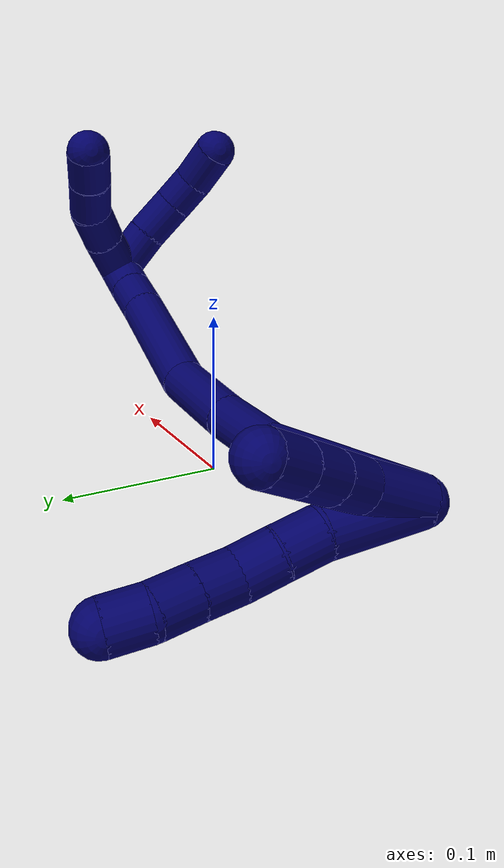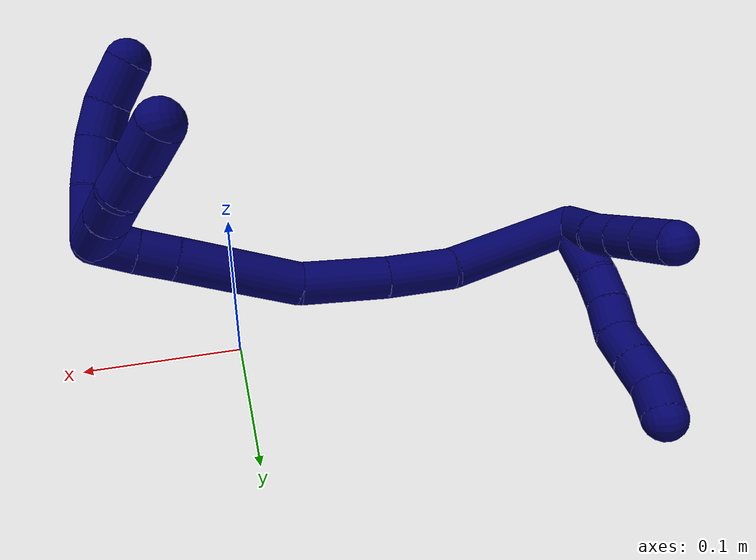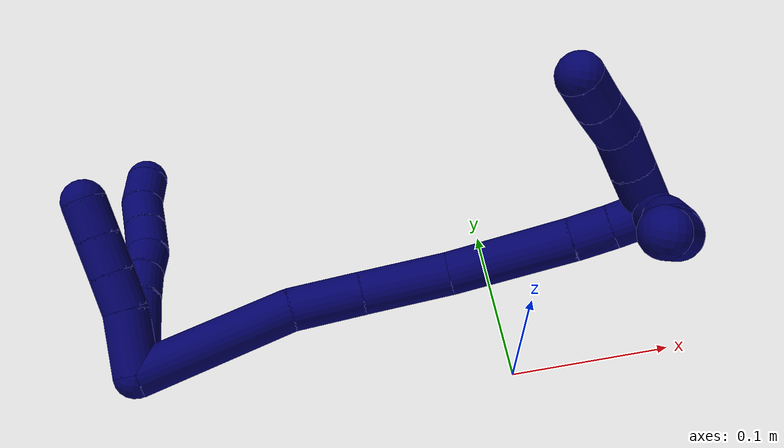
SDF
<sdf version="1.7">
 <world name="default">
  <model name="7">
   <static>0</static>
   <link name="7">
    <collision name="collision-cylinder-e_1_2_8">
     <pose>0.013766 0.020448 0.002571 -1.44571 0.588882 -0.522783</pose>
     <geometry><cylinder><radius>0.0125</radius><length>0.049568</length></cylinder></geometry>
     <surface>
      <friction><ode><mu>1.16</mu><mu2>1.16</mu2><slip1>0</slip1><slip2>0</slip2></ode></friction>
      <contact><ode><kp>1e+06</kp><kd>1</kd><max_vel>0</max_vel><min_depth>0.001</min_depth></ode></contact>
     </surface>
    </collision>
    <visual name="visual-cylinder-e_1_2_8">
     <pose>0.013766 0.020448 0.002571 -1.44571 0.588882 -0.522783</pose>
     <geometry><cylinder><radius>0.0125</radius><length>0.049568</length></cylinder></geometry>
     <material><ambient>0.003922 0 0.403922 1</ambient></material>
    </visual>
    <collision name="collision-cylinder-e_2_8_9">
     <pose>0.031697 0.050161 0.005703 -1.51038 0.421869 -0.397788</pose>
     <geometry><cylinder><radius>0.0125</radius><length>0.020346</length></cylinder></geometry>
     <surface>
      <friction><ode><mu>1.16</mu><mu2>1.16</mu2><slip1>0</slip1><slip2>0</slip2></ode></friction>
      <contact><ode><kp>1e+06</kp><kd>1</kd><max_vel>0</max_vel><min_depth>0.001</min_depth></ode></contact>
     </surface>
    </collision>
    <visual name="visual-cylinder-e_2_8_9">
     <pose>0.031697 0.050161 0.005703 -1.51038 0.421869 -0.397788</pose>
     <geometry><cylinder><radius>0.0125</radius><length>0.020346</length></cylinder></geometry>
     <material><ambient>0.003922 0 0.403922 1</ambient></material>
    </visual>
    <collision name="collision-cylinder-e_3_9_10">
     <pose>0.039484 0.068752 0.005822 -1.61805 0.369944 -0.387416</pose>
     <geometry><cylinder><radius>0.0125</radius><length>0.02003</length></cylinder></geometry>
     <surface>
      <friction><ode><mu>1.16</mu><mu2>1.16</mu2><slip1>0</slip1><slip2>0</slip2></ode></friction>
      <contact><ode><kp>1e+06</kp><kd>1</kd><max_vel>0</max_vel><min_depth>0.001</min_depth></ode></contact>
     </surface>
    </collision>
    <visual name="visual-cylinder-e_3_9_10">
     <pose>0.039484 0.068752 0.005822 -1.61805 0.369944 -0.387416</pose>
     <geometry><cylinder><radius>0.0125</radius><length>0.02003</length></cylinder></geometry>
     <material><ambient>0.003922 0 0.403922 1</ambient></material>
    </visual>
    <collision name="collision-cylinder-e_4_10_11">
     <pose>0.048268 0.086389 0.007495 -1.32163 0.541984 -0.425438</pose>
     <geometry><cylinder><radius>0.0125</radius><length>0.020018</length></cylinder></geometry>
     <surface>
      <friction><ode><mu>1.16</mu><mu2>1.16</mu2><slip1>0</slip1><slip2>0</slip2></ode></friction>
      <contact><ode><kp>1e+06</kp><kd>1</kd><max_vel>0</max_vel><min_depth>0.001</min_depth></ode></contact>
     </surface>
    </collision>
    <visual name="visual-cylinder-e_4_10_11">
     <pose>0.048268 0.086389 0.007495 -1.32163 0.541984 -0.425438</pose>
     <geometry><cylinder><radius>0.0125</radius><length>0.020018</length></cylinder></geometry>
     <material><ambient>0.003922 0 0.403922 1</ambient></material>
    </visual>
    <collision name="collision-cylinder-e_5_11_12">
     <pose>0.058457 0.103057 0.01183 -1.31117 0.526486 -0.408731</pose>
     <geometry><cylinder><radius>0.0125</radius><length>0.020006</length></cylinder></geometry>
     <surface>
      <friction><ode><mu>1.16</mu><mu2>1.16</mu2><slip1>0</slip1><slip2>0</slip2></ode></friction>
      <contact><ode><kp>1e+06</kp><kd>1</kd><max_vel>0</max_vel><min_depth>0.001</min_depth></ode></contact>
     </surface>
    </collision>
    <visual name="visual-cylinder-e_5_11_12">
     <pose>0.058457 0.103057 0.01183 -1.31117 0.526486 -0.408731</pose>
     <geometry><cylinder><radius>0.0125</radius><length>0.020006</length></cylinder></geometry>
     <material><ambient>0.003922 0 0.403922 1</ambient></material>
    </visual>
    <collision name="collision-cylinder-e_6_12_6">
     <pose>0.06888 0.119851 0.013825 -1.59753 0.568985 -0.583556</pose>
     <geometry><cylinder><radius>0.0125</radius><length>0.020032</length></cylinder></geometry>
     <surface>
      <friction><ode><mu>1.16</mu><mu2>1.16</mu2><slip1>0</slip1><slip2>0</slip2></ode></friction>
      <contact><ode><kp>1e+06</kp><kd>1</kd><max_vel>0</max_vel><min_depth>0.001</min_depth></ode></contact>
     </surface>
    </collision>
    <visual name="visual-cylinder-e_6_12_6">
     <pose>0.06888 0.119851 0.013825 -1.59753 0.568985 -0.583556</pose>
     <geometry><cylinder><radius>0.0125</radius><length>0.020032</length></cylinder></geometry>
     <material><ambient>0.003922 0 0.403922 1</ambient></material>
    </visual>
    <collision name="collision-cylinder-e_1_2_13">
     <pose>0.015247 0.007724 0.004854 -1.00979 1.03161 -0.607353</pose>
     <geometry><cylinder><radius>0.0125</radius><length>0.035536</length></cylinder></geometry>
     <surface>
      <friction><ode><mu>1.16</mu><mu2>1.16</mu2><slip1>0</slip1><slip2>0</slip2></ode></friction>
      <contact><ode><kp>1e+06</kp><kd>1</kd><max_vel>0</max_vel><min_depth>0.001</min_depth></ode></contact>
     </surface>
    </collision>
    <visual name="visual-cylinder-e_1_2_13">
     <pose>0.015247 0.007724 0.004854 -1.00979 1.03161 -0.607353</pose>
     <geometry><cylinder><radius>0.0125</radius><length>0.035536</length></cylinder></geometry>
     <material><ambient>0.003922 0 0.403922 1</ambient></material>
    </visual>
    <collision name="collision-cylinder-e_2_13_14">
     <pose>0.039159 0.019433 0.014467 -0.696872 0.94919 -0.369009</pose>
     <geometry><cylinder><radius>0.0125</radius><length>0.021318</length></cylinder></geometry>
     <surface>
      <friction><ode><mu>1.16</mu><mu2>1.16</mu2><slip1>0</slip1><slip2>0</slip2></ode></friction>
      <contact><ode><kp>1e+06</kp><kd>1</kd><max_vel>0</max_vel><min_depth>0.001</min_depth></ode></contact>
     </surface>
    </collision>
    <visual name="visual-cylinder-e_2_13_14">
     <pose>0.039159 0.019433 0.014467 -0.696872 0.94919 -0.369009</pose>
     <geometry><cylinder><radius>0.0125</radius><length>0.021318</length></cylinder></geometry>
     <material><ambient>0.003922 0 0.403922 1</ambient></material>
    </visual>
    <collision name="collision-cylinder-e_3_14_15">
     <pose>0.056418 0.02738 0.02408 -0.684881 0.940769 -0.358616</pose>
     <geometry><cylinder><radius>0.0125</radius><length>0.021271</length></cylinder></geometry>
     <surface>
      <friction><ode><mu>1.16</mu><mu2>1.16</mu2><slip1>0</slip1><slip2>0</slip2></ode></friction>
      <contact><ode><kp>1e+06</kp><kd>1</kd><max_vel>0</max_vel><min_depth>0.001</min_depth></ode></contact>
     </surface>
    </collision>
    <visual name="visual-cylinder-e_3_14_15">
     <pose>0.056418 0.02738 0.02408 -0.684881 0.940769 -0.358616</pose>
     <geometry><cylinder><radius>0.0125</radius><length>0.021271</length></cylinder></geometry>
     <material><ambient>0.003922 0 0.403922 1</ambient></material>
    </visual>
    <collision name="collision-cylinder-e_4_15_5">
     <pose>0.073833 0.035465 0.033917 -0.690961 0.938185 -0.36086</pose>
     <geometry><cylinder><radius>0.0125</radius><length>0.021876</length></cylinder></geometry>
     <surface>
      <friction><ode><mu>1.16</mu><mu2>1.16</mu2><slip1>0</slip1><slip2>0</slip2></ode></friction>
      <contact><ode><kp>1e+06</kp><kd>1</kd><max_vel>0</max_vel><min_depth>0.001</min_depth></ode></contact>
     </surface>
    </collision>
    <visual name="visual-cylinder-e_4_15_5">
     <pose>0.073833 0.035465 0.033917 -0.690961 0.938185 -0.36086</pose>
     <geometry><cylinder><radius>0.0125</radius><length>0.021876</length></cylinder></geometry>
     <material><ambient>0.003922 0 0.403922 1</ambient></material>
    </visual>
    <collision name="collision-cylinder-e_1_2_16">
     <pose>0.018952 0.010513 -0.039716 -2.88282 0.432209 -2.07157</pose>
     <geometry><cylinder><radius>0.0125</radius><length>0.090488</length></cylinder></geometry>
     <surface>
      <friction><ode><mu>1.16</mu><mu2>1.16</mu2><slip1>0</slip1><slip2>0</slip2></ode></friction>
      <contact><ode><kp>1e+06</kp><kd>1</kd><max_vel>0</max_vel><min_depth>0.001</min_depth></ode></contact>
     </surface>
    </collision>
    <visual name="visual-cylinder-e_1_2_16">
     <pose>0.018952 0.010513 -0.039716 -2.88282 0.432209 -2.07157</pose>
     <geometry><cylinder><radius>0.0125</radius><length>0.090488</length></cylinder></geometry>
     <material><ambient>0.003922 0 0.403922 1</ambient></material>
    </visual>
    <collision name="collision-cylinder-e_2_16_17">
     <pose>0.044876 0.021355 -0.098991 -3.12476 0.342384 -3.04432</pose>
     <geometry><cylinder><radius>0.0125</radius><length>0.041537</length></cylinder></geometry>
     <surface>
      <friction><ode><mu>1.16</mu><mu2>1.16</mu2><slip1>0</slip1><slip2>0</slip2></ode></friction>
      <contact><ode><kp>1e+06</kp><kd>1</kd><max_vel>0</max_vel><min_depth>0.001</min_depth></ode></contact>
     </surface>
    </collision>
    <visual name="visual-cylinder-e_2_16_17">
     <pose>0.044876 0.021355 -0.098991 -3.12476 0.342384 -3.04432</pose>
     <geometry><cylinder><radius>0.0125</radius><length>0.041537</length></cylinder></geometry>
     <material><ambient>0.003922 0 0.403922 1</ambient></material>
    </visual>
    <collision name="collision-cylinder-e_3_17_18">
     <pose>0.060943 0.020585 -0.142684 3.09607 0.360067 2.89271</pose>
     <geometry><cylinder><radius>0.0125</radius><length>0.051626</length></cylinder></geometry>
     <surface>
      <friction><ode><mu>1.16</mu><mu2>1.16</mu2><slip1>0</slip1><slip2>0</slip2></ode></friction>
      <contact><ode><kp>1e+06</kp><kd>1</kd><max_vel>0</max_vel><min_depth>0.001</min_depth></ode></contact>
     </surface>
    </collision>
    <visual name="visual-cylinder-e_3_17_18">
     <pose>0.060943 0.020585 -0.142684 3.09607 0.360067 2.89271</pose>
     <geometry><cylinder><radius>0.0125</radius><length>0.051626</length></cylinder></geometry>
     <material><ambient>0.003922 0 0.403922 1</ambient></material>
    </visual>
    <collision name="collision-cylinder-e_4_18_19">
     <pose>0.087082 0.009663 -0.197057 2.82754 0.492055 2.0165</pose>
     <geometry><cylinder><radius>0.0125</radius><length>0.072151</length></cylinder></geometry>
     <surface>
      <friction><ode><mu>1.16</mu><mu2>1.16</mu2><slip1>0</slip1><slip2>0</slip2></ode></friction>
      <contact><ode><kp>1e+06</kp><kd>1</kd><max_vel>0</max_vel><min_depth>0.001</min_depth></ode></contact>
     </surface>
    </collision>
    <visual name="visual-cylinder-e_4_18_19">
     <pose>0.087082 0.009663 -0.197057 2.82754 0.492055 2.0165</pose>
     <geometry><cylinder><radius>0.0125</radius><length>0.072151</length></cylinder></geometry>
     <material><ambient>0.003922 0 0.403922 1</ambient></material>
    </visual>
    <collision name="collision-cylinder-e_5_19_20">
     <pose>0.109775 -0.002941 -0.236474 2.84726 0.532476 2.1458</pose>
     <geometry><cylinder><radius>0.0125</radius><length>0.022258</length></cylinder></geometry>
     <surface>
      <friction><ode><mu>1.16</mu><mu2>1.16</mu2><slip1>0</slip1><slip2>0</slip2></ode></friction>
      <contact><ode><kp>1e+06</kp><kd>1</kd><max_vel>0</max_vel><min_depth>0.001</min_depth></ode></contact>
     </surface>
    </collision>
    <visual name="visual-cylinder-e_5_19_20">
     <pose>0.109775 -0.002941 -0.236474 2.84726 0.532476 2.1458</pose>
     <geometry><cylinder><radius>0.0125</radius><length>0.022258</length></cylinder></geometry>
     <material><ambient>0.003922 0 0.403922 1</ambient></material>
    </visual>
    <collision name="collision-cylinder-e_6_20_1">
     <pose>0.121471 -0.008784 -0.254276 2.80055 0.583761 2.10078</pose>
     <geometry><cylinder><radius>0.0125</radius><length>0.02194</length></cylinder></geometry>
     <surface>
      <friction><ode><mu>1.16</mu><mu2>1.16</mu2><slip1>0</slip1><slip2>0</slip2></ode></friction>
      <contact><ode><kp>1e+06</kp><kd>1</kd><max_vel>0</max_vel><min_depth>0.001</min_depth></ode></contact>
     </surface>
    </collision>
    <visual name="visual-cylinder-e_6_20_1">
     <pose>0.121471 -0.008784 -0.254276 2.80055 0.583761 2.10078</pose>
     <geometry><cylinder><radius>0.0125</radius><length>0.02194</length></cylinder></geometry>
     <material><ambient>0.003922 0 0.403922 1</ambient></material>
    </visual>
    <collision name="collision-cylinder-e_1_1_21">
     <pose>0.129657 -0.025925 -0.26055 1.40526 0.148776 0.126048</pose>
     <geometry><cylinder><radius>0.0125</radius><length>0.028869</length></cylinder></geometry>
     <surface>
      <friction><ode><mu>1.16</mu><mu2>1.16</mu2><slip1>0</slip1><slip2>0</slip2></ode></friction>
      <contact><ode><kp>1e+06</kp><kd>1</kd><max_vel>0</max_vel><min_depth>0.001</min_depth></ode></contact>
     </surface>
    </collision>
    <visual name="visual-cylinder-e_1_1_21">
     <pose>0.129657 -0.025925 -0.26055 1.40526 0.148776 0.126048</pose>
     <geometry><cylinder><radius>0.0125</radius><length>0.028869</length></cylinder></geometry>
     <material><ambient>0.003922 0 0.403922 1</ambient></material>
    </visual>
    <collision name="collision-cylinder-e_2_21_22">
     <pose>0.132802 -0.052368 -0.255194 1.33249 0.078847 0.061999</pose>
     <geometry><cylinder><radius>0.0125</radius><length>0.025523</length></cylinder></geometry>
     <surface>
      <friction><ode><mu>1.16</mu><mu2>1.16</mu2><slip1>0</slip1><slip2>0</slip2></ode></friction>
      <contact><ode><kp>1e+06</kp><kd>1</kd><max_vel>0</max_vel><min_depth>0.001</min_depth></ode></contact>
     </surface>
    </collision>
    <visual name="visual-cylinder-e_2_21_22">
     <pose>0.132802 -0.052368 -0.255194 1.33249 0.078847 0.061999</pose>
     <geometry><cylinder><radius>0.0125</radius><length>0.025523</length></cylinder></geometry>
     <material><ambient>0.003922 0 0.403922 1</ambient></material>
    </visual>
    <collision name="collision-cylinder-e_3_22_23">
     <pose>0.134912 -0.074028 -0.248255 1.17029 0.10893 0.072211</pose>
     <geometry><cylinder><radius>0.0125</radius><length>0.020315</length></cylinder></geometry>
     <surface>
      <friction><ode><mu>1.16</mu><mu2>1.16</mu2><slip1>0</slip1><slip2>0</slip2></ode></friction>
      <contact><ode><kp>1e+06</kp><kd>1</kd><max_vel>0</max_vel><min_depth>0.001</min_depth></ode></contact>
     </surface>
    </collision>
    <visual name="visual-cylinder-e_3_22_23">
     <pose>0.134912 -0.074028 -0.248255 1.17029 0.10893 0.072211</pose>
     <geometry><cylinder><radius>0.0125</radius><length>0.020315</length></cylinder></geometry>
     <material><ambient>0.003922 0 0.403922 1</ambient></material>
    </visual>
    <collision name="collision-cylinder-e_4_23_4">
     <pose>0.138796 -0.092764 -0.236373 0.871058 0.221667 0.10348</pose>
     <geometry><cylinder><radius>0.0125</radius><length>0.025293</length></cylinder></geometry>
     <surface>
      <friction><ode><mu>1.16</mu><mu2>1.16</mu2><slip1>0</slip1><slip2>0</slip2></ode></friction>
      <contact><ode><kp>1e+06</kp><kd>1</kd><max_vel>0</max_vel><min_depth>0.001</min_depth></ode></contact>
     </surface>
    </collision>
    <visual name="visual-cylinder-e_4_23_4">
     <pose>0.138796 -0.092764 -0.236373 0.871058 0.221667 0.10348</pose>
     <geometry><cylinder><radius>0.0125</radius><length>0.025293</length></cylinder></geometry>
     <material><ambient>0.003922 0 0.403922 1</ambient></material>
    </visual>
    <collision name="collision-cylinder-e_1_1_24">
     <pose>0.139114 -0.01369 -0.253978 0.203825 0.90471 0.099314</pose>
     <geometry><cylinder><radius>0.0125</radius><length>0.029497</length></cylinder></geometry>
     <surface>
      <friction><ode><mu>1.16</mu><mu2>1.16</mu2><slip1>0</slip1><slip2>0</slip2></ode></friction>
      <contact><ode><kp>1e+06</kp><kd>1</kd><max_vel>0</max_vel><min_depth>0.001</min_depth></ode></contact>
     </surface>
    </collision>
    <visual name="visual-cylinder-e_1_1_24">
     <pose>0.139114 -0.01369 -0.253978 0.203825 0.90471 0.099314</pose>
     <geometry><cylinder><radius>0.0125</radius><length>0.029497</length></cylinder></geometry>
     <material><ambient>0.003922 0 0.403922 1</ambient></material>
    </visual>
    <collision name="collision-cylinder-e_2_24_25">
     <pose>0.160056 -0.017604 -0.237719 0.275004 0.886807 0.131252</pose>
     <geometry><cylinder><radius>0.0125</radius><length>0.024119</length></cylinder></geometry>
     <surface>
      <friction><ode><mu>1.16</mu><mu2>1.16</mu2><slip1>0</slip1><slip2>0</slip2></ode></friction>
      <contact><ode><kp>1e+06</kp><kd>1</kd><max_vel>0</max_vel><min_depth>0.001</min_depth></ode></contact>
     </surface>
    </collision>
    <visual name="visual-cylinder-e_2_24_25">
     <pose>0.160056 -0.017604 -0.237719 0.275004 0.886807 0.131252</pose>
     <geometry><cylinder><radius>0.0125</radius><length>0.024119</length></cylinder></geometry>
     <material><ambient>0.003922 0 0.403922 1</ambient></material>
    </visual>
    <collision name="collision-cylinder-e_3_25_26">
     <pose>0.176472 -0.024379 -0.221662 0.494739 0.619556 0.161318</pose>
     <geometry><cylinder><radius>0.0125</radius><length>0.024348</length></cylinder></geometry>
     <surface>
      <friction><ode><mu>1.16</mu><mu2>1.16</mu2><slip1>0</slip1><slip2>0</slip2></ode></friction>
      <contact><ode><kp>1e+06</kp><kd>1</kd><max_vel>0</max_vel><min_depth>0.001</min_depth></ode></contact>
     </surface>
    </collision>
    <visual name="visual-cylinder-e_3_25_26">
     <pose>0.176472 -0.024379 -0.221662 0.494739 0.619556 0.161318</pose>
     <geometry><cylinder><radius>0.0125</radius><length>0.024348</length></cylinder></geometry>
     <material><ambient>0.003922 0 0.403922 1</ambient></material>
    </visual>
    <collision name="collision-cylinder-e_4_26_3">
     <pose>0.190266 -0.033441 -0.205376 0.522505 0.656437 0.181593</pose>
     <geometry><cylinder><radius>0.0125</radius><length>0.022036</length></cylinder></geometry>
     <surface>
      <friction><ode><mu>1.16</mu><mu2>1.16</mu2><slip1>0</slip1><slip2>0</slip2></ode></friction>
      <contact><ode><kp>1e+06</kp><kd>1</kd><max_vel>0</max_vel><min_depth>0.001</min_depth></ode></contact>
     </surface>
    </collision>
    <visual name="visual-cylinder-e_4_26_3">
     <pose>0.190266 -0.033441 -0.205376 0.522505 0.656437 0.181593</pose>
     <geometry><cylinder><radius>0.0125</radius><length>0.022036</length></cylinder></geometry>
     <material><ambient>0.003922 0 0.403922 1</ambient></material>
    </visual>
    <collision name="collision-sphere-3">
     <pose>0.19699 -0.037797 -0.197812 0 -0 0</pose>
     <geometry><sphere><radius>0.0125</radius></sphere></geometry>
     <surface>
      <friction><ode><mu>1.16</mu><mu2>1.16</mu2><slip1>0</slip1><slip2>0</slip2></ode></friction>
      <contact><ode><kp>1e+06</kp><kd>1</kd><max_vel>0</max_vel><min_depth>0.001</min_depth></ode></contact>
     </surface>
    </collision>
    <visual name="visual-sphere-3">
     <pose>0.19699 -0.037797 -0.197812 0 -0 0</pose>
     <geometry><sphere><radius>0.0125</radius></sphere></geometry>
     <material><ambient>0.003922 0 0.403922 1</ambient></material>
    </visual>
    <collision name="collision-sphere-26">
     <pose>0.183541 -0.029085 -0.212939 0 -0 0</pose>
     <geometry><sphere><radius>0.0125</radius></sphere></geometry>
     <surface>
      <friction><ode><mu>1.16</mu><mu2>1.16</mu2><slip1>0</slip1><slip2>0</slip2></ode></friction>
      <contact><ode><kp>1e+06</kp><kd>1</kd><max_vel>0</max_vel><min_depth>0.001</min_depth></ode></contact>
     </surface>
    </collision>
    <visual name="visual-sphere-26">
     <pose>0.183541 -0.029085 -0.212939 0 -0 0</pose>
     <geometry><sphere><radius>0.0125</radius></sphere></geometry>
     <material><ambient>0.003922 0 0.403922 1</ambient></material>
    </visual>
    <collision name="collision-sphere-25">
     <pose>0.169403 -0.019673 -0.230385 0 -0 0</pose>
     <geometry><sphere><radius>0.0125</radius></sphere></geometry>
     <surface>
      <friction><ode><mu>1.16</mu><mu2>1.16</mu2><slip1>0</slip1><slip2>0</slip2></ode></friction>
      <contact><ode><kp>1e+06</kp><kd>1</kd><max_vel>0</max_vel><min_depth>0.001</min_depth></ode></contact>
     </surface>
    </collision>
    <visual name="visual-sphere-25">
     <pose>0.169403 -0.019673 -0.230385 0 -0 0</pose>
     <geometry><sphere><radius>0.0125</radius></sphere></geometry>
     <material><ambient>0.003922 0 0.403922 1</ambient></material>
    </visual>
    <collision name="collision-sphere-24">
     <pose>0.150709 -0.015535 -0.245053 0 -0 0</pose>
     <geometry><sphere><radius>0.0125</radius></sphere></geometry>
     <surface>
      <friction><ode><mu>1.16</mu><mu2>1.16</mu2><slip1>0</slip1><slip2>0</slip2></ode></friction>
      <contact><ode><kp>1e+06</kp><kd>1</kd><max_vel>0</max_vel><min_depth>0.001</min_depth></ode></contact>
     </surface>
    </collision>
    <visual name="visual-sphere-24">
     <pose>0.150709 -0.015535 -0.245053 0 -0 0</pose>
     <geometry><sphere><radius>0.0125</radius></sphere></geometry>
     <material><ambient>0.003922 0 0.403922 1</ambient></material>
    </visual>
    <collision name="collision-sphere-4">
     <pose>0.141577 -0.102202 -0.228427 0 -0 0</pose>
     <geometry><sphere><radius>0.0125</radius></sphere></geometry>
     <surface>
      <friction><ode><mu>1.16</mu><mu2>1.16</mu2><slip1>0</slip1><slip2>0</slip2></ode></friction>
      <contact><ode><kp>1e+06</kp><kd>1</kd><max_vel>0</max_vel><min_depth>0.001</min_depth></ode></contact>
     </surface>
    </collision>
    <visual name="visual-sphere-4">
     <pose>0.141577 -0.102202 -0.228427 0 -0 0</pose>
     <geometry><sphere><radius>0.0125</radius></sphere></geometry>
     <material><ambient>0.003922 0 0.403922 1</ambient></material>
    </visual>
    <collision name="collision-sphere-23">
     <pose>0.136016 -0.083326 -0.244318 0 -0 0</pose>
     <geometry><sphere><radius>0.0125</radius></sphere></geometry>
     <surface>
      <friction><ode><mu>1.16</mu><mu2>1.16</mu2><slip1>0</slip1><slip2>0</slip2></ode></friction>
      <contact><ode><kp>1e+06</kp><kd>1</kd><max_vel>0</max_vel><min_depth>0.001</min_depth></ode></contact>
     </surface>
    </collision>
    <visual name="visual-sphere-23">
     <pose>0.136016 -0.083326 -0.244318 0 -0 0</pose>
     <geometry><sphere><radius>0.0125</radius></sphere></geometry>
     <material><ambient>0.003922 0 0.403922 1</ambient></material>
    </visual>
    <collision name="collision-sphere-22">
     <pose>0.133807 -0.06473 -0.252191 0 -0 0</pose>
     <geometry><sphere><radius>0.0125</radius></sphere></geometry>
     <surface>
      <friction><ode><mu>1.16</mu><mu2>1.16</mu2><slip1>0</slip1><slip2>0</slip2></ode></friction>
      <contact><ode><kp>1e+06</kp><kd>1</kd><max_vel>0</max_vel><min_depth>0.001</min_depth></ode></contact>
     </surface>
    </collision>
    <visual name="visual-sphere-22">
     <pose>0.133807 -0.06473 -0.252191 0 -0 0</pose>
     <geometry><sphere><radius>0.0125</radius></sphere></geometry>
     <material><ambient>0.003922 0 0.403922 1</ambient></material>
    </visual>
    <collision name="collision-sphere-21">
     <pose>0.131797 -0.040005 -0.258198 0 -0 0</pose>
     <geometry><sphere><radius>0.0125</radius></sphere></geometry>
     <surface>
      <friction><ode><mu>1.16</mu><mu2>1.16</mu2><slip1>0</slip1><slip2>0</slip2></ode></friction>
      <contact><ode><kp>1e+06</kp><kd>1</kd><max_vel>0</max_vel><min_depth>0.001</min_depth></ode></contact>
     </surface>
    </collision>
    <visual name="visual-sphere-21">
     <pose>0.131797 -0.040005 -0.258198 0 -0 0</pose>
     <geometry><sphere><radius>0.0125</radius></sphere></geometry>
     <material><ambient>0.003922 0 0.403922 1</ambient></material>
    </visual>
    <collision name="collision-sphere-1">
     <pose>0.127518 -0.011845 -0.262902 0 -0 0</pose>
     <geometry><sphere><radius>0.0125</radius></sphere></geometry>
     <surface>
      <friction><ode><mu>1.16</mu><mu2>1.16</mu2><slip1>0</slip1><slip2>0</slip2></ode></friction>
      <contact><ode><kp>1e+06</kp><kd>1</kd><max_vel>0</max_vel><min_depth>0.001</min_depth></ode></contact>
     </surface>
    </collision>
    <visual name="visual-sphere-1">
     <pose>0.127518 -0.011845 -0.262902 0 -0 0</pose>
     <geometry><sphere><radius>0.0125</radius></sphere></geometry>
     <material><ambient>0.003922 0 0.403922 1</ambient></material>
    </visual>
    <collision name="collision-sphere-12">
     <pose>0.063484 0.111416 0.01405 0 -0 0</pose>
     <geometry><sphere><radius>0.0125</radius></sphere></geometry>
     <surface>
      <friction><ode><mu>1.16</mu><mu2>1.16</mu2><slip1>0</slip1><slip2>0</slip2></ode></friction>
      <contact><ode><kp>1e+06</kp><kd>1</kd><max_vel>0</max_vel><min_depth>0.001</min_depth></ode></contact>
     </surface>
    </collision>
    <visual name="visual-sphere-12">
     <pose>0.063484 0.111416 0.01405 0 -0 0</pose>
     <geometry><sphere><radius>0.0125</radius></sphere></geometry>
     <material><ambient>0.003922 0 0.403922 1</ambient></material>
    </visual>
    <collision name="collision-sphere-11">
     <pose>0.053431 0.094699 0.00961 0 -0 0</pose>
     <geometry><sphere><radius>0.0125</radius></sphere></geometry>
     <surface>
      <friction><ode><mu>1.16</mu><mu2>1.16</mu2><slip1>0</slip1><slip2>0</slip2></ode></friction>
      <contact><ode><kp>1e+06</kp><kd>1</kd><max_vel>0</max_vel><min_depth>0.001</min_depth></ode></contact>
     </surface>
    </collision>
    <visual name="visual-sphere-11">
     <pose>0.053431 0.094699 0.00961 0 -0 0</pose>
     <geometry><sphere><radius>0.0125</radius></sphere></geometry>
     <material><ambient>0.003922 0 0.403922 1</ambient></material>
    </visual>
    <collision name="collision-sphere-10">
     <pose>0.043105 0.078079 0.005381 0 -0 0</pose>
     <geometry><sphere><radius>0.0125</radius></sphere></geometry>
     <surface>
      <friction><ode><mu>1.16</mu><mu2>1.16</mu2><slip1>0</slip1><slip2>0</slip2></ode></friction>
      <contact><ode><kp>1e+06</kp><kd>1</kd><max_vel>0</max_vel><min_depth>0.001</min_depth></ode></contact>
     </surface>
    </collision>
    <visual name="visual-sphere-10">
     <pose>0.043105 0.078079 0.005381 0 -0 0</pose>
     <geometry><sphere><radius>0.0125</radius></sphere></geometry>
     <material><ambient>0.003922 0 0.403922 1</ambient></material>
    </visual>
    <collision name="collision-sphere-9">
     <pose>0.035863 0.059425 0.006263 0 -0 0</pose>
     <geometry><sphere><radius>0.0125</radius></sphere></geometry>
     <surface>
      <friction><ode><mu>1.16</mu><mu2>1.16</mu2><slip1>0</slip1><slip2>0</slip2></ode></friction>
      <contact><ode><kp>1e+06</kp><kd>1</kd><max_vel>0</max_vel><min_depth>0.001</min_depth></ode></contact>
     </surface>
    </collision>
    <visual name="visual-sphere-9">
     <pose>0.035863 0.059425 0.006263 0 -0 0</pose>
     <geometry><sphere><radius>0.0125</radius></sphere></geometry>
     <material><ambient>0.003922 0 0.403922 1</ambient></material>
    </visual>
    <collision name="collision-sphere-2">
     <geometry><sphere><radius>0.0125</radius></sphere></geometry>
     <surface>
      <friction><ode><mu>1.16</mu><mu2>1.16</mu2><slip1>0</slip1><slip2>0</slip2></ode></friction>
      <contact><ode><kp>1e+06</kp><kd>1</kd><max_vel>0</max_vel><min_depth>0.001</min_depth></ode></contact>
     </surface>
    </collision>
    <visual name="visual-sphere-2">
     <geometry><sphere><radius>0.0125</radius></sphere></geometry>
     <material><ambient>0.003922 0 0.403922 1</ambient></material>
    </visual>
    <collision name="collision-sphere-19">
     <pose>0.104125 -0.000159 -0.227298 0 -0 0</pose>
     <geometry><sphere><radius>0.0125</radius></sphere></geometry>
     <surface>
      <friction><ode><mu>1.16</mu><mu2>1.16</mu2><slip1>0</slip1><slip2>0</slip2></ode></friction>
      <contact><ode><kp>1e+06</kp><kd>1</kd><max_vel>0</max_vel><min_depth>0.001</min_depth></ode></contact>
     </surface>
    </collision>
    <visual name="visual-sphere-19">
     <pose>0.104125 -0.000159 -0.227298 0 -0 0</pose>
     <geometry><sphere><radius>0.0125</radius></sphere></geometry>
     <material><ambient>0.003922 0 0.403922 1</ambient></material>
    </visual>
    <collision name="collision-sphere-8">
     <pose>0.027532 0.040897 0.005142 0 -0 0</pose>
     <geometry><sphere><radius>0.0125</radius></sphere></geometry>
     <surface>
      <friction><ode><mu>1.16</mu><mu2>1.16</mu2><slip1>0</slip1><slip2>0</slip2></ode></friction>
      <contact><ode><kp>1e+06</kp><kd>1</kd><max_vel>0</max_vel><min_depth>0.001</min_depth></ode></contact>
     </surface>
    </collision>
    <visual name="visual-sphere-8">
     <pose>0.027532 0.040897 0.005142 0 -0 0</pose>
     <geometry><sphere><radius>0.0125</radius></sphere></geometry>
     <material><ambient>0.003922 0 0.403922 1</ambient></material>
    </visual>
    <collision name="collision-sphere-6">
     <pose>0.074276 0.128286 0.013599 0 -0 0</pose>
     <geometry><sphere><radius>0.0125</radius></sphere></geometry>
     <surface>
      <friction><ode><mu>1.16</mu><mu2>1.16</mu2><slip1>0</slip1><slip2>0</slip2></ode></friction>
      <contact><ode><kp>1e+06</kp><kd>1</kd><max_vel>0</max_vel><min_depth>0.001</min_depth></ode></contact>
     </surface>
    </collision>
    <visual name="visual-sphere-6">
     <pose>0.074276 0.128286 0.013599 0 -0 0</pose>
     <geometry><sphere><radius>0.0125</radius></sphere></geometry>
     <material><ambient>0.003922 0 0.403922 1</ambient></material>
    </visual>
    <collision name="collision-sphere-13">
     <pose>0.030494 0.015449 0.009707 0 -0 0</pose>
     <geometry><sphere><radius>0.0125</radius></sphere></geometry>
     <surface>
      <friction><ode><mu>1.16</mu><mu2>1.16</mu2><slip1>0</slip1><slip2>0</slip2></ode></friction>
      <contact><ode><kp>1e+06</kp><kd>1</kd><max_vel>0</max_vel><min_depth>0.001</min_depth></ode></contact>
     </surface>
    </collision>
    <visual name="visual-sphere-13">
     <pose>0.030494 0.015449 0.009707 0 -0 0</pose>
     <geometry><sphere><radius>0.0125</radius></sphere></geometry>
     <material><ambient>0.003922 0 0.403922 1</ambient></material>
    </visual>
    <collision name="collision-sphere-14">
     <pose>0.047825 0.023416 0.019227 0 -0 0</pose>
     <geometry><sphere><radius>0.0125</radius></sphere></geometry>
     <surface>
      <friction><ode><mu>1.16</mu><mu2>1.16</mu2><slip1>0</slip1><slip2>0</slip2></ode></friction>
      <contact><ode><kp>1e+06</kp><kd>1</kd><max_vel>0</max_vel><min_depth>0.001</min_depth></ode></contact>
     </surface>
    </collision>
    <visual name="visual-sphere-14">
     <pose>0.047825 0.023416 0.019227 0 -0 0</pose>
     <geometry><sphere><radius>0.0125</radius></sphere></geometry>
     <material><ambient>0.003922 0 0.403922 1</ambient></material>
    </visual>
    <collision name="collision-sphere-15">
     <pose>0.065012 0.031344 0.028933 0 -0 0</pose>
     <geometry><sphere><radius>0.0125</radius></sphere></geometry>
     <surface>
      <friction><ode><mu>1.16</mu><mu2>1.16</mu2><slip1>0</slip1><slip2>0</slip2></ode></friction>
      <contact><ode><kp>1e+06</kp><kd>1</kd><max_vel>0</max_vel><min_depth>0.001</min_depth></ode></contact>
     </surface>
    </collision>
    <visual name="visual-sphere-15">
     <pose>0.065012 0.031344 0.028933 0 -0 0</pose>
     <geometry><sphere><radius>0.0125</radius></sphere></geometry>
     <material><ambient>0.003922 0 0.403922 1</ambient></material>
    </visual>
    <collision name="collision-sphere-5">
     <pose>0.082654 0.039587 0.038901 0 -0 0</pose>
     <geometry><sphere><radius>0.0125</radius></sphere></geometry>
     <surface>
      <friction><ode><mu>1.16</mu><mu2>1.16</mu2><slip1>0</slip1><slip2>0</slip2></ode></friction>
      <contact><ode><kp>1e+06</kp><kd>1</kd><max_vel>0</max_vel><min_depth>0.001</min_depth></ode></contact>
     </surface>
    </collision>
    <visual name="visual-sphere-5">
     <pose>0.082654 0.039587 0.038901 0 -0 0</pose>
     <geometry><sphere><radius>0.0125</radius></sphere></geometry>
     <material><ambient>0.003922 0 0.403922 1</ambient></material>
    </visual>
    <collision name="collision-sphere-16">
     <pose>0.037903 0.021026 -0.079431 0 -0 0</pose>
     <geometry><sphere><radius>0.0125</radius></sphere></geometry>
     <surface>
      <friction><ode><mu>1.16</mu><mu2>1.16</mu2><slip1>0</slip1><slip2>0</slip2></ode></friction>
      <contact><ode><kp>1e+06</kp><kd>1</kd><max_vel>0</max_vel><min_depth>0.001</min_depth></ode></contact>
     </surface>
    </collision>
    <visual name="visual-sphere-16">
     <pose>0.037903 0.021026 -0.079431 0 -0 0</pose>
     <geometry><sphere><radius>0.0125</radius></sphere></geometry>
     <material><ambient>0.003922 0 0.403922 1</ambient></material>
    </visual>
    <collision name="collision-sphere-17">
     <pose>0.051849 0.021684 -0.118552 0 -0 0</pose>
     <geometry><sphere><radius>0.0125</radius></sphere></geometry>
     <surface>
      <friction><ode><mu>1.16</mu><mu2>1.16</mu2><slip1>0</slip1><slip2>0</slip2></ode></friction>
      <contact><ode><kp>1e+06</kp><kd>1</kd><max_vel>0</max_vel><min_depth>0.001</min_depth></ode></contact>
     </surface>
    </collision>
    <visual name="visual-sphere-17">
     <pose>0.051849 0.021684 -0.118552 0 -0 0</pose>
     <geometry><sphere><radius>0.0125</radius></sphere></geometry>
     <material><ambient>0.003922 0 0.403922 1</ambient></material>
    </visual>
    <collision name="collision-sphere-18">
     <pose>0.070038 0.019485 -0.166817 0 -0 0</pose>
     <geometry><sphere><radius>0.0125</radius></sphere></geometry>
     <surface>
      <friction><ode><mu>1.16</mu><mu2>1.16</mu2><slip1>0</slip1><slip2>0</slip2></ode></friction>
      <contact><ode><kp>1e+06</kp><kd>1</kd><max_vel>0</max_vel><min_depth>0.001</min_depth></ode></contact>
     </surface>
    </collision>
    <visual name="visual-sphere-18">
     <pose>0.070038 0.019485 -0.166817 0 -0 0</pose>
     <geometry><sphere><radius>0.0125</radius></sphere></geometry>
     <material><ambient>0.003922 0 0.403922 1</ambient></material>
    </visual>
    <collision name="collision-sphere-20">
     <pose>0.115425 -0.005722 -0.24565 0 -0 0</pose>
     <geometry><sphere><radius>0.0125</radius></sphere></geometry>
     <surface>
      <friction><ode><mu>1.16</mu><mu2>1.16</mu2><slip1>0</slip1><slip2>0</slip2></ode></friction>
      <contact><ode><kp>1e+06</kp><kd>1</kd><max_vel>0</max_vel><min_depth>0.001</min_depth></ode></contact>
     </surface>
    </collision>
    <visual name="visual-sphere-20">
     <pose>0.115425 -0.005722 -0.24565 0 -0 0</pose>
     <geometry><sphere><radius>0.0125</radius></sphere></geometry>
     <material><ambient>0.003922 0 0.403922 1</ambient></material>
    </visual>
    <inertial>
     <pose>0.077039 0.009195 -0.114104 0 -0 0</pose>
     <mass>0.75</mass>
     <inertia><ixx>-2.7e-05</ixx><ixy>0</ixy><ixz>0</ixz><iyy>8e-05</iyy><iyz>0</iyz><izz>-0.000102</izz></inertia>
    </inertial>
   </link>
   <pose>-0.215322 0.007643 0.072628 -1.25322 -0.82671 1.15399</pose>
  </model>
 </world>
</sdf>
